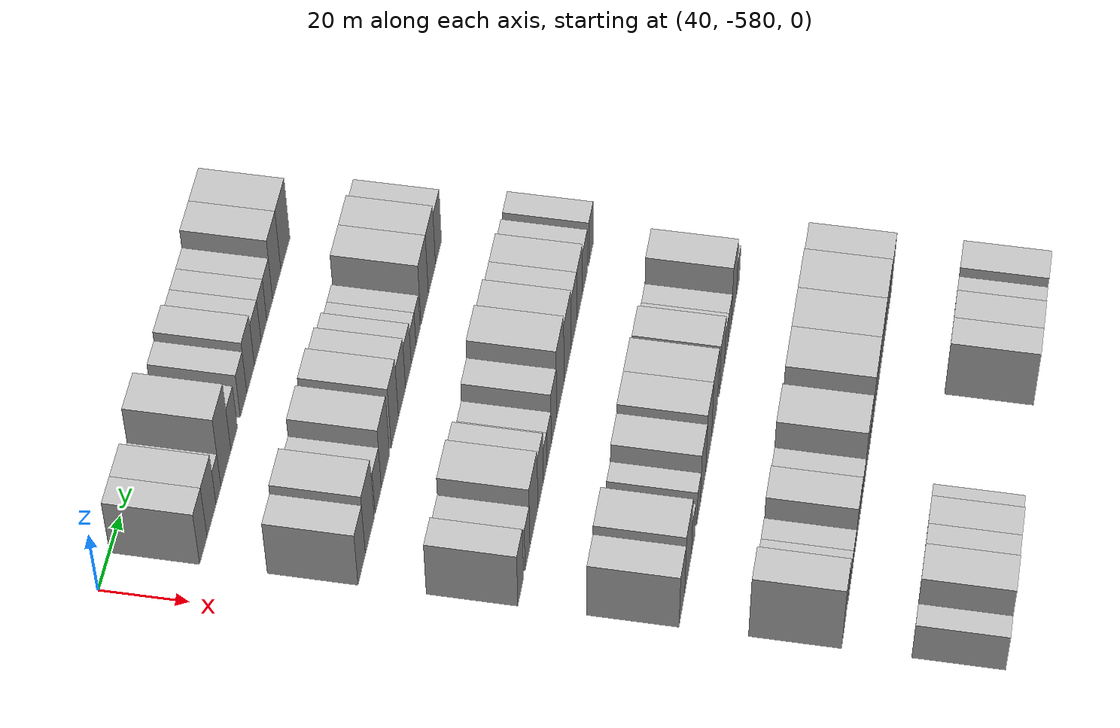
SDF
<sdf version="1.6">
 <world name="default">
  <model name="building_1">
   <static>1</static>
   <pose>50.0000 -566.3464 0 0.000000 0.000000 0.000000</pose>
   <link name="link">
    <pose>0 0 9.00 0 0 0</pose>
    <collision name="collision"><geometry><box><size>20.0000 7.3073 18.0000</size></box></geometry></collision>
    <visual name="visual">
     <cast_shadows>0</cast_shadows>
     <geometry><box><size>20.0000 7.3073 18.0000</size></box></geometry>
     <material>
      <script>
       <uri>model://HANNAS_wall/materials/scripts</uri>
       <uri>model://HANNAS_wall/materials/textures</uri>
       <name>vrc/HANNAS_wall</name>
      </script>
     </material>
    </visual>
   </link>
  </model>
  <model name="building_2">
   <static>1</static>
   <pose>50.0000 -558.2330 0 0.000000 0.000000 0.000000</pose>
   <link name="link">
    <pose>0 0 9.00 0 0 0</pose>
    <collision name="collision"><geometry><box><size>20.0000 8.9195 18.0000</size></box></geometry></collision>
    <visual name="visual">
     <cast_shadows>0</cast_shadows>
     <geometry><box><size>20.0000 8.9195 18.0000</size></box></geometry>
     <material>
      <script>
       <uri>model://HANNAS_wall/materials/scripts</uri>
       <uri>model://HANNAS_wall/materials/textures</uri>
       <name>vrc/HANNAS_wall</name>
      </script>
     </material>
    </visual>
   </link>
  </model>
  <model name="building_3">
   <static>1</static>
   <pose>50.0000 -551.3060 0 0.000000 0.000000 0.000000</pose>
   <link name="link">
    <pose>0 0 6.00 0 0 0</pose>
    <collision name="collision"><geometry><box><size>20.0000 4.9344 12.0000</size></box></geometry></collision>
    <visual name="visual">
     <cast_shadows>0</cast_shadows>
     <geometry><box><size>20.0000 4.9344 12.0000</size></box></geometry>
     <material>
      <script>
       <uri>model://HANNAS_wall/materials/scripts</uri>
       <uri>model://HANNAS_wall/materials/textures</uri>
       <name>vrc/HANNAS_wall</name>
      </script>
     </material>
    </visual>
   </link>
  </model>
  <model name="building_4">
   <static>1</static>
   <pose>50.0000 -543.7752 0 0.000000 0.000000 0.000000</pose>
   <link name="link">
    <pose>0 0 12.00 0 0 0</pose>
    <collision name="collision"><geometry><box><size>20.0000 10.1272 24.0000</size></box></geometry></collision>
    <visual name="visual">
     <cast_shadows>0</cast_shadows>
     <geometry><box><size>20.0000 10.1272 24.0000</size></box></geometry>
     <material>
      <script>
       <uri>model://HANNAS_wall/materials/scripts</uri>
       <uri>model://HANNAS_wall/materials/textures</uri>
       <name>vrc/HANNAS_wall</name>
      </script>
     </material>
    </visual>
   </link>
  </model>
  <model name="building_5">
   <static>1</static>
   <pose>50.0000 -535.4070 0 0.000000 0.000000 0.000000</pose>
   <link name="link">
    <pose>0 0 7.50 0 0 0</pose>
    <collision name="collision"><geometry><box><size>20.0000 6.6092 15.0000</size></box></geometry></collision>
    <visual name="visual">
     <cast_shadows>0</cast_shadows>
     <geometry><box><size>20.0000 6.6092 15.0000</size></box></geometry>
     <material>
      <script>
       <uri>model://HANNAS_wall/materials/scripts</uri>
       <uri>model://HANNAS_wall/materials/textures</uri>
       <name>vrc/HANNAS_wall</name>
      </script>
     </material>
    </visual>
   </link>
  </model>
  <model name="building_6">
   <static>1</static>
   <pose>50.0000 -525.6789 0 0.000000 0.000000 0.000000</pose>
   <link name="link">
    <pose>0 0 7.50 0 0 0</pose>
    <collision name="collision"><geometry><box><size>20.0000 6.8469 15.0000</size></box></geometry></collision>
    <visual name="visual">
     <cast_shadows>0</cast_shadows>
     <geometry><box><size>20.0000 6.8469 15.0000</size></box></geometry>
     <material>
      <script>
       <uri>model://HANNAS_wall/materials/scripts</uri>
       <uri>model://HANNAS_wall/materials/textures</uri>
       <name>vrc/HANNAS_wall</name>
      </script>
     </material>
    </visual>
   </link>
  </model>
  <model name="building_7">
   <static>1</static>
   <pose>50.0000 -518.2476 0 0.000000 0.000000 0.000000</pose>
   <link name="link">
    <pose>0 0 9.00 0 0 0</pose>
    <collision name="collision"><geometry><box><size>20.0000 8.0158 18.0000</size></box></geometry></collision>
    <visual name="visual">
     <cast_shadows>0</cast_shadows>
     <geometry><box><size>20.0000 8.0158 18.0000</size></box></geometry>
     <material>
      <script>
       <uri>model://HANNAS_wall/materials/scripts</uri>
       <uri>model://HANNAS_wall/materials/textures</uri>
       <name>vrc/HANNAS_wall</name>
      </script>
     </material>
    </visual>
   </link>
  </model>
  <model name="building_8">
   <static>1</static>
   <pose>50.0000 -510.7067 0 0.000000 0.000000 0.000000</pose>
   <link name="link">
    <pose>0 0 7.50 0 0 0</pose>
    <collision name="collision"><geometry><box><size>20.0000 7.0660 15.0000</size></box></geometry></collision>
    <visual name="visual">
     <cast_shadows>0</cast_shadows>
     <geometry><box><size>20.0000 7.0660 15.0000</size></box></geometry>
     <material>
      <script>
       <uri>model://HANNAS_wall/materials/scripts</uri>
       <uri>model://HANNAS_wall/materials/textures</uri>
       <name>vrc/HANNAS_wall</name>
      </script>
     </material>
    </visual>
   </link>
  </model>
  <model name="building_9">
   <static>1</static>
   <pose>50.0000 -504.0830 0 0.000000 0.000000 0.000000</pose>
   <link name="link">
    <pose>0 0 7.50 0 0 0</pose>
    <collision name="collision"><geometry><box><size>20.0000 6.1815 15.0000</size></box></geometry></collision>
    <visual name="visual">
     <cast_shadows>0</cast_shadows>
     <geometry><box><size>20.0000 6.1815 15.0000</size></box></geometry>
     <material>
      <script>
       <uri>model://HANNAS_wall/materials/scripts</uri>
       <uri>model://HANNAS_wall/materials/textures</uri>
       <name>vrc/HANNAS_wall</name>
      </script>
     </material>
    </visual>
   </link>
  </model>
  <model name="building_10">
   <static>1</static>
   <pose>50.0000 -497.8380 0 0.000000 0.000000 0.000000</pose>
   <link name="link">
    <pose>0 0 7.50 0 0 0</pose>
    <collision name="collision"><geometry><box><size>20.0000 6.3085 15.0000</size></box></geometry></collision>
    <visual name="visual">
     <cast_shadows>0</cast_shadows>
     <geometry><box><size>20.0000 6.3085 15.0000</size></box></geometry>
     <material>
      <script>
       <uri>model://HANNAS_wall/materials/scripts</uri>
       <uri>model://HANNAS_wall/materials/textures</uri>
       <name>vrc/HANNAS_wall</name>
      </script>
     </material>
    </visual>
   </link>
  </model>
  <model name="building_11">
   <static>1</static>
   <pose>50.0000 -490.1755 0 0.000000 0.000000 0.000000</pose>
   <link name="link">
    <pose>0 0 10.50 0 0 0</pose>
    <collision name="collision"><geometry><box><size>20.0000 9.0165 21.0000</size></box></geometry></collision>
    <visual name="visual">
     <cast_shadows>0</cast_shadows>
     <geometry><box><size>20.0000 9.0165 21.0000</size></box></geometry>
     <material>
      <script>
       <uri>model://HANNAS_wall/materials/scripts</uri>
       <uri>model://HANNAS_wall/materials/textures</uri>
       <name>vrc/HANNAS_wall</name>
      </script>
     </material>
    </visual>
   </link>
  </model>
  <model name="building_12">
   <static>1</static>
   <pose>50.0000 -480.6185 0 0.000000 0.000000 0.000000</pose>
   <link name="link">
    <pose>0 0 10.50 0 0 0</pose>
    <collision name="collision"><geometry><box><size>20.0000 10.0975 21.0000</size></box></geometry></collision>
    <visual name="visual">
     <cast_shadows>0</cast_shadows>
     <geometry><box><size>20.0000 10.0975 21.0000</size></box></geometry>
     <material>
      <script>
       <uri>model://HANNAS_wall/materials/scripts</uri>
       <uri>model://HANNAS_wall/materials/textures</uri>
       <name>vrc/HANNAS_wall</name>
      </script>
     </material>
    </visual>
   </link>
  </model>
  <model name="building_131">
   <static>1</static>
   <pose>85.0000 -565.9275 0 0.000000 0.000000 0.000000</pose>
   <link name="link">
    <pose>0 0 9.00 0 0 0</pose>
    <collision name="collision"><geometry><box><size>20.0000 8.1449 18.0000</size></box></geometry></collision>
    <visual name="visual">
     <cast_shadows>0</cast_shadows>
     <geometry><box><size>20.0000 8.1449 18.0000</size></box></geometry>
     <material>
      <script>
       <uri>model://HANNAS_wall/materials/scripts</uri>
       <uri>model://HANNAS_wall/materials/textures</uri>
       <name>vrc/HANNAS_wall</name>
      </script>
     </material>
    </visual>
   </link>
  </model>
  <model name="building_132">
   <static>1</static>
   <pose>85.0000 -556.8488 0 0.000000 0.000000 0.000000</pose>
   <link name="link">
    <pose>0 0 10.50 0 0 0</pose>
    <collision name="collision"><geometry><box><size>20.0000 10.0124 21.0000</size></box></geometry></collision>
    <visual name="visual">
     <cast_shadows>0</cast_shadows>
     <geometry><box><size>20.0000 10.0124 21.0000</size></box></geometry>
     <material>
      <script>
       <uri>model://HANNAS_wall/materials/scripts</uri>
       <uri>model://HANNAS_wall/materials/textures</uri>
       <name>vrc/HANNAS_wall</name>
      </script>
     </material>
    </visual>
   </link>
  </model>
  <model name="building_133">
   <static>1</static>
   <pose>85.0000 -547.3153 0 0.000000 0.000000 0.000000</pose>
   <link name="link">
    <pose>0 0 7.50 0 0 0</pose>
    <collision name="collision"><geometry><box><size>20.0000 7.0547 15.0000</size></box></geometry></collision>
    <visual name="visual">
     <cast_shadows>0</cast_shadows>
     <geometry><box><size>20.0000 7.0547 15.0000</size></box></geometry>
     <material>
      <script>
       <uri>model://HANNAS_wall/materials/scripts</uri>
       <uri>model://HANNAS_wall/materials/textures</uri>
       <name>vrc/HANNAS_wall</name>
      </script>
     </material>
    </visual>
   </link>
  </model>
  <model name="building_134">
   <static>1</static>
   <pose>85.0000 -539.0311 0 0.000000 0.000000 0.000000</pose>
   <link name="link">
    <pose>0 0 10.50 0 0 0</pose>
    <collision name="collision"><geometry><box><size>20.0000 9.5136 21.0000</size></box></geometry></collision>
    <visual name="visual">
     <cast_shadows>0</cast_shadows>
     <geometry><box><size>20.0000 9.5136 21.0000</size></box></geometry>
     <material>
      <script>
       <uri>model://HANNAS_wall/materials/scripts</uri>
       <uri>model://HANNAS_wall/materials/textures</uri>
       <name>vrc/HANNAS_wall</name>
      </script>
     </material>
    </visual>
   </link>
  </model>
  <model name="building_135">
   <static>1</static>
   <pose>85.0000 -528.0190 0 0.000000 0.000000 0.000000</pose>
   <link name="link">
    <pose>0 0 10.50 0 0 0</pose>
    <collision name="collision"><geometry><box><size>20.0000 8.5106 21.0000</size></box></geometry></collision>
    <visual name="visual">
     <cast_shadows>0</cast_shadows>
     <geometry><box><size>20.0000 8.5106 21.0000</size></box></geometry>
     <material>
      <script>
       <uri>model://HANNAS_wall/materials/scripts</uri>
       <uri>model://HANNAS_wall/materials/textures</uri>
       <name>vrc/HANNAS_wall</name>
      </script>
     </material>
    </visual>
   </link>
  </model>
  <model name="building_136">
   <static>1</static>
   <pose>85.0000 -519.5244 0 0.000000 0.000000 0.000000</pose>
   <link name="link">
    <pose>0 0 9.00 0 0 0</pose>
    <collision name="collision"><geometry><box><size>20.0000 8.4786 18.0000</size></box></geometry></collision>
    <visual name="visual">
     <cast_shadows>0</cast_shadows>
     <geometry><box><size>20.0000 8.4786 18.0000</size></box></geometry>
     <material>
      <script>
       <uri>model://HANNAS_wall/materials/scripts</uri>
       <uri>model://HANNAS_wall/materials/textures</uri>
       <name>vrc/HANNAS_wall</name>
      </script>
     </material>
    </visual>
   </link>
  </model>
  <model name="building_137">
   <static>1</static>
   <pose>85.0000 -511.8862 0 0.000000 0.000000 0.000000</pose>
   <link name="link">
    <pose>0 0 7.50 0 0 0</pose>
    <collision name="collision"><geometry><box><size>20.0000 6.7979 15.0000</size></box></geometry></collision>
    <visual name="visual">
     <cast_shadows>0</cast_shadows>
     <geometry><box><size>20.0000 6.7979 15.0000</size></box></geometry>
     <material>
      <script>
       <uri>model://HANNAS_wall/materials/scripts</uri>
       <uri>model://HANNAS_wall/materials/textures</uri>
       <name>vrc/HANNAS_wall</name>
      </script>
     </material>
    </visual>
   </link>
  </model>
  <model name="building_138">
   <static>1</static>
   <pose>85.0000 -505.6266 0 0.000000 0.000000 0.000000</pose>
   <link name="link">
    <pose>0 0 6.00 0 0 0</pose>
    <collision name="collision"><geometry><box><size>20.0000 5.7211 12.0000</size></box></geometry></collision>
    <visual name="visual">
     <cast_shadows>0</cast_shadows>
     <geometry><box><size>20.0000 5.7211 12.0000</size></box></geometry>
     <material>
      <script>
       <uri>model://HANNAS_wall/materials/scripts</uri>
       <uri>model://HANNAS_wall/materials/textures</uri>
       <name>vrc/HANNAS_wall</name>
      </script>
     </material>
    </visual>
   </link>
  </model>
  <model name="building_139">
   <static>1</static>
   <pose>85.0000 -500.1822 0 0.000000 0.000000 0.000000</pose>
   <link name="link">
    <pose>0 0 6.00 0 0 0</pose>
    <collision name="collision"><geometry><box><size>20.0000 5.1678 12.0000</size></box></geometry></collision>
    <visual name="visual">
     <cast_shadows>0</cast_shadows>
     <geometry><box><size>20.0000 5.1678 12.0000</size></box></geometry>
     <material>
      <script>
       <uri>model://HANNAS_wall/materials/scripts</uri>
       <uri>model://HANNAS_wall/materials/textures</uri>
       <name>vrc/HANNAS_wall</name>
      </script>
     </material>
    </visual>
   </link>
  </model>
  <model name="building_140">
   <static>1</static>
   <pose>85.0000 -491.9917 0 0.000000 0.000000 0.000000</pose>
   <link name="link">
    <pose>0 0 10.50 0 0 0</pose>
    <collision name="collision"><geometry><box><size>20.0000 9.2131 21.0000</size></box></geometry></collision>
    <visual name="visual">
     <cast_shadows>0</cast_shadows>
     <geometry><box><size>20.0000 9.2131 21.0000</size></box></geometry>
     <material>
      <script>
       <uri>model://HANNAS_wall/materials/scripts</uri>
       <uri>model://HANNAS_wall/materials/textures</uri>
       <name>vrc/HANNAS_wall</name>
      </script>
     </material>
    </visual>
   </link>
  </model>
  <model name="building_141">
   <static>1</static>
   <pose>85.0000 -482.9227 0 0.000000 0.000000 0.000000</pose>
   <link name="link">
    <pose>0 0 10.50 0 0 0</pose>
    <collision name="collision"><geometry><box><size>20.0000 8.9249 21.0000</size></box></geometry></collision>
    <visual name="visual">
     <cast_shadows>0</cast_shadows>
     <geometry><box><size>20.0000 8.9249 21.0000</size></box></geometry>
     <material>
      <script>
       <uri>model://HANNAS_wall/materials/scripts</uri>
       <uri>model://HANNAS_wall/materials/textures</uri>
       <name>vrc/HANNAS_wall</name>
      </script>
     </material>
    </visual>
   </link>
  </model>
  <model name="building_142">
   <static>1</static>
   <pose>85.0000 -474.6259 0 0.000000 0.000000 0.000000</pose>
   <link name="link">
    <pose>0 0 9.00 0 0 0</pose>
    <collision name="collision"><geometry><box><size>20.0000 7.6687 18.0000</size></box></geometry></collision>
    <visual name="visual">
     <cast_shadows>0</cast_shadows>
     <geometry><box><size>20.0000 7.6687 18.0000</size></box></geometry>
     <material>
      <script>
       <uri>model://HANNAS_wall/materials/scripts</uri>
       <uri>model://HANNAS_wall/materials/textures</uri>
       <name>vrc/HANNAS_wall</name>
      </script>
     </material>
    </visual>
   </link>
  </model>
  <model name="building_255">
   <static>1</static>
   <pose>120.0000 -566.3201 0 0.000000 0.000000 0.000000</pose>
   <link name="link">
    <pose>0 0 9.00 0 0 0</pose>
    <collision name="collision"><geometry><box><size>20.0000 7.3599 18.0000</size></box></geometry></collision>
    <visual name="visual">
     <cast_shadows>0</cast_shadows>
     <geometry><box><size>20.0000 7.3599 18.0000</size></box></geometry>
     <material>
      <script>
       <uri>model://HANNAS_wall/materials/scripts</uri>
       <uri>model://HANNAS_wall/materials/textures</uri>
       <name>vrc/HANNAS_wall</name>
      </script>
     </material>
    </visual>
   </link>
  </model>
  <model name="building_256">
   <static>1</static>
   <pose>120.0000 -557.4984 0 0.000000 0.000000 0.000000</pose>
   <link name="link">
    <pose>0 0 7.50 0 0 0</pose>
    <collision name="collision"><geometry><box><size>20.0000 6.2835 15.0000</size></box></geometry></collision>
    <visual name="visual">
     <cast_shadows>0</cast_shadows>
     <geometry><box><size>20.0000 6.2835 15.0000</size></box></geometry>
     <material>
      <script>
       <uri>model://HANNAS_wall/materials/scripts</uri>
       <uri>model://HANNAS_wall/materials/textures</uri>
       <name>vrc/HANNAS_wall</name>
      </script>
     </material>
    </visual>
   </link>
  </model>
  <model name="building_257">
   <static>1</static>
   <pose>120.0000 -549.1129 0 0.000000 0.000000 0.000000</pose>
   <link name="link">
    <pose>0 0 10.50 0 0 0</pose>
    <collision name="collision"><geometry><box><size>20.0000 10.4876 21.0000</size></box></geometry></collision>
    <visual name="visual">
     <cast_shadows>0</cast_shadows>
     <geometry><box><size>20.0000 10.4876 21.0000</size></box></geometry>
     <material>
      <script>
       <uri>model://HANNAS_wall/materials/scripts</uri>
       <uri>model://HANNAS_wall/materials/textures</uri>
       <name>vrc/HANNAS_wall</name>
      </script>
     </material>
    </visual>
   </link>
  </model>
  <model name="building_258">
   <static>1</static>
   <pose>120.0000 -540.2070 0 0.000000 0.000000 0.000000</pose>
   <link name="link">
    <pose>0 0 9.00 0 0 0</pose>
    <collision name="collision"><geometry><box><size>20.0000 7.3241 18.0000</size></box></geometry></collision>
    <visual name="visual">
     <cast_shadows>0</cast_shadows>
     <geometry><box><size>20.0000 7.3241 18.0000</size></box></geometry>
     <material>
      <script>
       <uri>model://HANNAS_wall/materials/scripts</uri>
       <uri>model://HANNAS_wall/materials/textures</uri>
       <name>vrc/HANNAS_wall</name>
      </script>
     </material>
    </visual>
   </link>
  </model>
  <model name="building_259">
   <static>1</static>
   <pose>120.0000 -534.1125 0 0.000000 0.000000 0.000000</pose>
   <link name="link">
    <pose>0 0 6.00 0 0 0</pose>
    <collision name="collision"><geometry><box><size>20.0000 4.8650 12.0000</size></box></geometry></collision>
    <visual name="visual">
     <cast_shadows>0</cast_shadows>
     <geometry><box><size>20.0000 4.8650 12.0000</size></box></geometry>
     <material>
      <script>
       <uri>model://HANNAS_wall/materials/scripts</uri>
       <uri>model://HANNAS_wall/materials/textures</uri>
       <name>vrc/HANNAS_wall</name>
      </script>
     </material>
    </visual>
   </link>
  </model>
  <model name="building_260">
   <static>1</static>
   <pose>120.0000 -528.7936 0 0.000000 0.000000 0.000000</pose>
   <link name="link">
    <pose>0 0 6.00 0 0 0</pose>
    <collision name="collision"><geometry><box><size>20.0000 5.7727 12.0000</size></box></geometry></collision>
    <visual name="visual">
     <cast_shadows>0</cast_shadows>
     <geometry><box><size>20.0000 5.7727 12.0000</size></box></geometry>
     <material>
      <script>
       <uri>model://HANNAS_wall/materials/scripts</uri>
       <uri>model://HANNAS_wall/materials/textures</uri>
       <name>vrc/HANNAS_wall</name>
      </script>
     </material>
    </visual>
   </link>
  </model>
  <model name="building_261">
   <static>1</static>
   <pose>120.0000 -522.1942 0 0.000000 0.000000 0.000000</pose>
   <link name="link">
    <pose>0 0 9.00 0 0 0</pose>
    <collision name="collision"><geometry><box><size>20.0000 7.4260 18.0000</size></box></geometry></collision>
    <visual name="visual">
     <cast_shadows>0</cast_shadows>
     <geometry><box><size>20.0000 7.4260 18.0000</size></box></geometry>
     <material>
      <script>
       <uri>model://HANNAS_wall/materials/scripts</uri>
       <uri>model://HANNAS_wall/materials/textures</uri>
       <name>vrc/HANNAS_wall</name>
      </script>
     </material>
    </visual>
   </link>
  </model>
  <model name="building_262">
   <static>1</static>
   <pose>120.0000 -513.3489 0 0.000000 0.000000 0.000000</pose>
   <link name="link">
    <pose>0 0 12.00 0 0 0</pose>
    <collision name="collision"><geometry><box><size>20.0000 10.2647 24.0000</size></box></geometry></collision>
    <visual name="visual">
     <cast_shadows>0</cast_shadows>
     <geometry><box><size>20.0000 10.2647 24.0000</size></box></geometry>
     <material>
      <script>
       <uri>model://HANNAS_wall/materials/scripts</uri>
       <uri>model://HANNAS_wall/materials/textures</uri>
       <name>vrc/HANNAS_wall</name>
      </script>
     </material>
    </visual>
   </link>
  </model>
  <model name="building_263">
   <static>1</static>
   <pose>120.0000 -503.1969 0 0.000000 0.000000 0.000000</pose>
   <link name="link">
    <pose>0 0 10.50 0 0 0</pose>
    <collision name="collision"><geometry><box><size>20.0000 10.0393 21.0000</size></box></geometry></collision>
    <visual name="visual">
     <cast_shadows>0</cast_shadows>
     <geometry><box><size>20.0000 10.0393 21.0000</size></box></geometry>
     <material>
      <script>
       <uri>model://HANNAS_wall/materials/scripts</uri>
       <uri>model://HANNAS_wall/materials/textures</uri>
       <name>vrc/HANNAS_wall</name>
      </script>
     </material>
    </visual>
   </link>
  </model>
  <model name="building_264">
   <static>1</static>
   <pose>120.0000 -494.2310 0 0.000000 0.000000 0.000000</pose>
   <link name="link">
    <pose>0 0 9.00 0 0 0</pose>
    <collision name="collision"><geometry><box><size>20.0000 7.8924 18.0000</size></box></geometry></collision>
    <visual name="visual">
     <cast_shadows>0</cast_shadows>
     <geometry><box><size>20.0000 7.8924 18.0000</size></box></geometry>
     <material>
      <script>
       <uri>model://HANNAS_wall/materials/scripts</uri>
       <uri>model://HANNAS_wall/materials/textures</uri>
       <name>vrc/HANNAS_wall</name>
      </script>
     </material>
    </visual>
   </link>
  </model>
  <model name="building_265">
   <static>1</static>
   <pose>120.0000 -486.0700 0 0.000000 0.000000 0.000000</pose>
   <link name="link">
    <pose>0 0 9.00 0 0 0</pose>
    <collision name="collision"><geometry><box><size>20.0000 8.4296 18.0000</size></box></geometry></collision>
    <visual name="visual">
     <cast_shadows>0</cast_shadows>
     <geometry><box><size>20.0000 8.4296 18.0000</size></box></geometry>
     <material>
      <script>
       <uri>model://HANNAS_wall/materials/scripts</uri>
       <uri>model://HANNAS_wall/materials/textures</uri>
       <name>vrc/HANNAS_wall</name>
      </script>
     </material>
    </visual>
   </link>
  </model>
  <model name="building_266">
   <static>1</static>
   <pose>120.0000 -478.3464 0 0.000000 0.000000 0.000000</pose>
   <link name="link">
    <pose>0 0 7.50 0 0 0</pose>
    <collision name="collision"><geometry><box><size>20.0000 7.0176 15.0000</size></box></geometry></collision>
    <visual name="visual">
     <cast_shadows>0</cast_shadows>
     <geometry><box><size>20.0000 7.0176 15.0000</size></box></geometry>
     <material>
      <script>
       <uri>model://HANNAS_wall/materials/scripts</uri>
       <uri>model://HANNAS_wall/materials/textures</uri>
       <name>vrc/HANNAS_wall</name>
      </script>
     </material>
    </visual>
   </link>
  </model>
  <model name="building_267">
   <static>1</static>
   <pose>120.0000 -469.5472 0 0.000000 0.000000 0.000000</pose>
   <link name="link">
    <pose>0 0 7.50 0 0 0</pose>
    <collision name="collision"><geometry><box><size>20.0000 6.5808 15.0000</size></box></geometry></collision>
    <visual name="visual">
     <cast_shadows>0</cast_shadows>
     <geometry><box><size>20.0000 6.5808 15.0000</size></box></geometry>
     <material>
      <script>
       <uri>model://HANNAS_wall/materials/scripts</uri>
       <uri>model://HANNAS_wall/materials/textures</uri>
       <name>vrc/HANNAS_wall</name>
      </script>
     </material>
    </visual>
   </link>
  </model>
  <model name="building_378">
   <static>1</static>
   <pose>155.0000 -565.7818 0 0.000000 0.000000 0.000000</pose>
   <link name="link">
    <pose>0 0 9.00 0 0 0</pose>
    <collision name="collision"><geometry><box><size>20.0000 8.4365 18.0000</size></box></geometry></collision>
    <visual name="visual">
     <cast_shadows>0</cast_shadows>
     <geometry><box><size>20.0000 8.4365 18.0000</size></box></geometry>
     <material>
      <script>
       <uri>model://HANNAS_wall/materials/scripts</uri>
       <uri>model://HANNAS_wall/materials/textures</uri>
       <name>vrc/HANNAS_wall</name>
      </script>
     </material>
    </visual>
   </link>
  </model>
  <model name="building_379">
   <static>1</static>
   <pose>155.0000 -556.3882 0 0.000000 0.000000 0.000000</pose>
   <link name="link">
    <pose>0 0 10.50 0 0 0</pose>
    <collision name="collision"><geometry><box><size>20.0000 10.3506 21.0000</size></box></geometry></collision>
    <visual name="visual">
     <cast_shadows>0</cast_shadows>
     <geometry><box><size>20.0000 10.3506 21.0000</size></box></geometry>
     <material>
      <script>
       <uri>model://HANNAS_wall/materials/scripts</uri>
       <uri>model://HANNAS_wall/materials/textures</uri>
       <name>vrc/HANNAS_wall</name>
      </script>
     </material>
    </visual>
   </link>
  </model>
  <model name="building_380">
   <static>1</static>
   <pose>155.0000 -548.5097 0 0.000000 0.000000 0.000000</pose>
   <link name="link">
    <pose>0 0 6.00 0 0 0</pose>
    <collision name="collision"><geometry><box><size>20.0000 5.4066 12.0000</size></box></geometry></collision>
    <visual name="visual">
     <cast_shadows>0</cast_shadows>
     <geometry><box><size>20.0000 5.4066 12.0000</size></box></geometry>
     <material>
      <script>
       <uri>model://HANNAS_wall/materials/scripts</uri>
       <uri>model://HANNAS_wall/materials/textures</uri>
       <name>vrc/HANNAS_wall</name>
      </script>
     </material>
    </visual>
   </link>
  </model>
  <model name="building_381">
   <static>1</static>
   <pose>155.0000 -540.0550 0 0.000000 0.000000 0.000000</pose>
   <link name="link">
    <pose>0 0 6.00 0 0 0</pose>
    <collision name="collision"><geometry><box><size>20.0000 5.5028 12.0000</size></box></geometry></collision>
    <visual name="visual">
     <cast_shadows>0</cast_shadows>
     <geometry><box><size>20.0000 5.5028 12.0000</size></box></geometry>
     <material>
      <script>
       <uri>model://HANNAS_wall/materials/scripts</uri>
       <uri>model://HANNAS_wall/materials/textures</uri>
       <name>vrc/HANNAS_wall</name>
      </script>
     </material>
    </visual>
   </link>
  </model>
  <model name="building_382">
   <static>1</static>
   <pose>155.0000 -532.9108 0 0.000000 0.000000 0.000000</pose>
   <link name="link">
    <pose>0 0 9.00 0 0 0</pose>
    <collision name="collision"><geometry><box><size>20.0000 8.7856 18.0000</size></box></geometry></collision>
    <visual name="visual">
     <cast_shadows>0</cast_shadows>
     <geometry><box><size>20.0000 8.7856 18.0000</size></box></geometry>
     <material>
      <script>
       <uri>model://HANNAS_wall/materials/scripts</uri>
       <uri>model://HANNAS_wall/materials/textures</uri>
       <name>vrc/HANNAS_wall</name>
      </script>
     </material>
    </visual>
   </link>
  </model>
  <model name="building_383">
   <static>1</static>
   <pose>155.0000 -523.7977 0 0.000000 0.000000 0.000000</pose>
   <link name="link">
    <pose>0 0 10.50 0 0 0</pose>
    <collision name="collision"><geometry><box><size>20.0000 9.4407 21.0000</size></box></geometry></collision>
    <visual name="visual">
     <cast_shadows>0</cast_shadows>
     <geometry><box><size>20.0000 9.4407 21.0000</size></box></geometry>
     <material>
      <script>
       <uri>model://HANNAS_wall/materials/scripts</uri>
       <uri>model://HANNAS_wall/materials/textures</uri>
       <name>vrc/HANNAS_wall</name>
      </script>
     </material>
    </visual>
   </link>
  </model>
  <model name="building_384">
   <static>1</static>
   <pose>155.0000 -514.2945 0 0.000000 0.000000 0.000000</pose>
   <link name="link">
    <pose>0 0 10.50 0 0 0</pose>
    <collision name="collision"><geometry><box><size>20.0000 9.5658 21.0000</size></box></geometry></collision>
    <visual name="visual">
     <cast_shadows>0</cast_shadows>
     <geometry><box><size>20.0000 9.5658 21.0000</size></box></geometry>
     <material>
      <script>
       <uri>model://HANNAS_wall/materials/scripts</uri>
       <uri>model://HANNAS_wall/materials/textures</uri>
       <name>vrc/HANNAS_wall</name>
      </script>
     </material>
    </visual>
   </link>
  </model>
  <model name="building_385">
   <static>1</static>
   <pose>155.0000 -502.1159 0 0.000000 0.000000 0.000000</pose>
   <link name="link">
    <pose>0 0 9.00 0 0 0</pose>
    <collision name="collision"><geometry><box><size>20.0000 8.7915 18.0000</size></box></geometry></collision>
    <visual name="visual">
     <cast_shadows>0</cast_shadows>
     <geometry><box><size>20.0000 8.7915 18.0000</size></box></geometry>
     <material>
      <script>
       <uri>model://HANNAS_wall/materials/scripts</uri>
       <uri>model://HANNAS_wall/materials/textures</uri>
       <name>vrc/HANNAS_wall</name>
      </script>
     </material>
    </visual>
   </link>
  </model>
  <model name="building_386">
   <static>1</static>
   <pose>155.0000 -494.7639 0 0.000000 0.000000 0.000000</pose>
   <link name="link">
    <pose>0 0 6.00 0 0 0</pose>
    <collision name="collision"><geometry><box><size>20.0000 5.9125 12.0000</size></box></geometry></collision>
    <visual name="visual">
     <cast_shadows>0</cast_shadows>
     <geometry><box><size>20.0000 5.9125 12.0000</size></box></geometry>
     <material>
      <script>
       <uri>model://HANNAS_wall/materials/scripts</uri>
       <uri>model://HANNAS_wall/materials/textures</uri>
       <name>vrc/HANNAS_wall</name>
      </script>
     </material>
    </visual>
   </link>
  </model>
  <model name="building_387">
   <static>1</static>
   <pose>155.0000 -488.9905 0 0.000000 0.000000 0.000000</pose>
   <link name="link">
    <pose>0 0 6.00 0 0 0</pose>
    <collision name="collision"><geometry><box><size>20.0000 5.6342 12.0000</size></box></geometry></collision>
    <visual name="visual">
     <cast_shadows>0</cast_shadows>
     <geometry><box><size>20.0000 5.6342 12.0000</size></box></geometry>
     <material>
      <script>
       <uri>model://HANNAS_wall/materials/scripts</uri>
       <uri>model://HANNAS_wall/materials/textures</uri>
       <name>vrc/HANNAS_wall</name>
      </script>
     </material>
    </visual>
   </link>
  </model>
  <model name="building_388">
   <static>1</static>
   <pose>155.0000 -481.7839 0 0.000000 0.000000 0.000000</pose>
   <link name="link">
    <pose>0 0 10.50 0 0 0</pose>
    <collision name="collision"><geometry><box><size>20.0000 8.7789 21.0000</size></box></geometry></collision>
    <visual name="visual">
     <cast_shadows>0</cast_shadows>
     <geometry><box><size>20.0000 8.7789 21.0000</size></box></geometry>
     <material>
      <script>
       <uri>model://HANNAS_wall/materials/scripts</uri>
       <uri>model://HANNAS_wall/materials/textures</uri>
       <name>vrc/HANNAS_wall</name>
      </script>
     </material>
    </visual>
   </link>
  </model>
  <model name="building_389">
   <static>1</static>
   <pose>155.0000 -474.4578 0 0.000000 0.000000 0.000000</pose>
   <link name="link">
    <pose>0 0 6.00 0 0 0</pose>
    <collision name="collision"><geometry><box><size>20.0000 5.8732 12.0000</size></box></geometry></collision>
    <visual name="visual">
     <cast_shadows>0</cast_shadows>
     <geometry><box><size>20.0000 5.8732 12.0000</size></box></geometry>
     <material>
      <script>
       <uri>model://HANNAS_wall/materials/scripts</uri>
       <uri>model://HANNAS_wall/materials/textures</uri>
       <name>vrc/HANNAS_wall</name>
      </script>
     </material>
    </visual>
   </link>
  </model>
  <model name="building_507">
   <static>1</static>
   <pose>190.0000 -565.7071 0 0.000000 0.000000 0.000000</pose>
   <link name="link">
    <pose>0 0 10.50 0 0 0</pose>
    <collision name="collision"><geometry><box><size>20.0000 8.5859 21.0000</size></box></geometry></collision>
    <visual name="visual">
     <cast_shadows>0</cast_shadows>
     <geometry><box><size>20.0000 8.5859 21.0000</size></box></geometry>
     <material>
      <script>
       <uri>model://HANNAS_wall/materials/scripts</uri>
       <uri>model://HANNAS_wall/materials/textures</uri>
       <name>vrc/HANNAS_wall</name>
      </script>
     </material>
    </visual>
   </link>
  </model>
  <model name="building_508">
   <static>1</static>
   <pose>190.0000 -555.5868 0 0.000000 0.000000 0.000000</pose>
   <link name="link">
    <pose>0 0 6.00 0 0 0</pose>
    <collision name="collision"><geometry><box><size>20.0000 5.6548 12.0000</size></box></geometry></collision>
    <visual name="visual">
     <cast_shadows>0</cast_shadows>
     <geometry><box><size>20.0000 5.6548 12.0000</size></box></geometry>
     <material>
      <script>
       <uri>model://HANNAS_wall/materials/scripts</uri>
       <uri>model://HANNAS_wall/materials/textures</uri>
       <name>vrc/HANNAS_wall</name>
      </script>
     </material>
    </visual>
   </link>
  </model>
  <model name="building_509">
   <static>1</static>
   <pose>190.0000 -549.9714 0 0.000000 0.000000 0.000000</pose>
   <link name="link">
    <pose>0 0 6.00 0 0 0</pose>
    <collision name="collision"><geometry><box><size>20.0000 5.5759 12.0000</size></box></geometry></collision>
    <visual name="visual">
     <cast_shadows>0</cast_shadows>
     <geometry><box><size>20.0000 5.5759 12.0000</size></box></geometry>
     <material>
      <script>
       <uri>model://HANNAS_wall/materials/scripts</uri>
       <uri>model://HANNAS_wall/materials/textures</uri>
       <name>vrc/HANNAS_wall</name>
      </script>
     </material>
    </visual>
   </link>
  </model>
  <model name="building_510">
   <static>1</static>
   <pose>190.0000 -541.8361 0 0.000000 0.000000 0.000000</pose>
   <link name="link">
    <pose>0 0 9.00 0 0 0</pose>
    <collision name="collision"><geometry><box><size>20.0000 8.6948 18.0000</size></box></geometry></collision>
    <visual name="visual">
     <cast_shadows>0</cast_shadows>
     <geometry><box><size>20.0000 8.6948 18.0000</size></box></geometry>
     <material>
      <script>
       <uri>model://HANNAS_wall/materials/scripts</uri>
       <uri>model://HANNAS_wall/materials/textures</uri>
       <name>vrc/HANNAS_wall</name>
      </script>
     </material>
    </visual>
   </link>
  </model>
  <model name="building_511">
   <static>1</static>
   <pose>190.0000 -533.8315 0 0.000000 0.000000 0.000000</pose>
   <link name="link">
    <pose>0 0 7.50 0 0 0</pose>
    <collision name="collision"><geometry><box><size>20.0000 7.3144 15.0000</size></box></geometry></collision>
    <visual name="visual">
     <cast_shadows>0</cast_shadows>
     <geometry><box><size>20.0000 7.3144 15.0000</size></box></geometry>
     <material>
      <script>
       <uri>model://HANNAS_wall/materials/scripts</uri>
       <uri>model://HANNAS_wall/materials/textures</uri>
       <name>vrc/HANNAS_wall</name>
      </script>
     </material>
    </visual>
   </link>
  </model>
  <model name="building_512">
   <static>1</static>
   <pose>190.0000 -524.8492 0 0.000000 0.000000 0.000000</pose>
   <link name="link">
    <pose>0 0 12.00 0 0 0</pose>
    <collision name="collision"><geometry><box><size>20.0000 10.6503 24.0000</size></box></geometry></collision>
    <visual name="visual">
     <cast_shadows>0</cast_shadows>
     <geometry><box><size>20.0000 10.6503 24.0000</size></box></geometry>
     <material>
      <script>
       <uri>model://HANNAS_wall/materials/scripts</uri>
       <uri>model://HANNAS_wall/materials/textures</uri>
       <name>vrc/HANNAS_wall</name>
      </script>
     </material>
    </visual>
   </link>
  </model>
  <model name="building_513">
   <static>1</static>
   <pose>190.0000 -517.0833 0 0.000000 0.000000 0.000000</pose>
   <link name="link">
    <pose>0 0 6.00 0 0 0</pose>
    <collision name="collision"><geometry><box><size>20.0000 4.8816 12.0000</size></box></geometry></collision>
    <visual name="visual">
     <cast_shadows>0</cast_shadows>
     <geometry><box><size>20.0000 4.8816 12.0000</size></box></geometry>
     <material>
      <script>
       <uri>model://HANNAS_wall/materials/scripts</uri>
       <uri>model://HANNAS_wall/materials/textures</uri>
       <name>vrc/HANNAS_wall</name>
      </script>
     </material>
    </visual>
   </link>
  </model>
  <model name="building_514">
   <static>1</static>
   <pose>190.0000 -508.8747 0 0.000000 0.000000 0.000000</pose>
   <link name="link">
    <pose>0 0 12.00 0 0 0</pose>
    <collision name="collision"><geometry><box><size>20.0000 11.5355 24.0000</size></box></geometry></collision>
    <visual name="visual">
     <cast_shadows>0</cast_shadows>
     <geometry><box><size>20.0000 11.5355 24.0000</size></box></geometry>
     <material>
      <script>
       <uri>model://HANNAS_wall/materials/scripts</uri>
       <uri>model://HANNAS_wall/materials/textures</uri>
       <name>vrc/HANNAS_wall</name>
      </script>
     </material>
    </visual>
   </link>
  </model>
  <model name="building_515">
   <static>1</static>
   <pose>190.0000 -497.4746 0 0.000000 0.000000 0.000000</pose>
   <link name="link">
    <pose>0 0 12.00 0 0 0</pose>
    <collision name="collision"><geometry><box><size>20.0000 11.2647 24.0000</size></box></geometry></collision>
    <visual name="visual">
     <cast_shadows>0</cast_shadows>
     <geometry><box><size>20.0000 11.2647 24.0000</size></box></geometry>
     <material>
      <script>
       <uri>model://HANNAS_wall/materials/scripts</uri>
       <uri>model://HANNAS_wall/materials/textures</uri>
       <name>vrc/HANNAS_wall</name>
      </script>
     </material>
    </visual>
   </link>
  </model>
  <model name="building_516">
   <static>1</static>
   <pose>190.0000 -486.1258 0 0.000000 0.000000 0.000000</pose>
   <link name="link">
    <pose>0 0 12.00 0 0 0</pose>
    <collision name="collision"><geometry><box><size>20.0000 11.4331 24.0000</size></box></geometry></collision>
    <visual name="visual">
     <cast_shadows>0</cast_shadows>
     <geometry><box><size>20.0000 11.4331 24.0000</size></box></geometry>
     <material>
      <script>
       <uri>model://HANNAS_wall/materials/scripts</uri>
       <uri>model://HANNAS_wall/materials/textures</uri>
       <name>vrc/HANNAS_wall</name>
      </script>
     </material>
    </visual>
   </link>
  </model>
  <model name="building_517">
   <static>1</static>
   <pose>190.0000 -474.1768 0 0.000000 0.000000 0.000000</pose>
   <link name="link">
    <pose>0 0 10.50 0 0 0</pose>
    <collision name="collision"><geometry><box><size>20.0000 8.4648 21.0000</size></box></geometry></collision>
    <visual name="visual">
     <cast_shadows>0</cast_shadows>
     <geometry><box><size>20.0000 8.4648 21.0000</size></box></geometry>
     <material>
      <script>
       <uri>model://HANNAS_wall/materials/scripts</uri>
       <uri>model://HANNAS_wall/materials/textures</uri>
       <name>vrc/HANNAS_wall</name>
      </script>
     </material>
    </visual>
   </link>
  </model>
  <model name="building_639">
   <static>1</static>
   <pose>225.0000 -567.1529 0 0.000000 0.000000 0.000000</pose>
   <link name="link">
    <pose>0 0 6.00 0 0 0</pose>
    <collision name="collision"><geometry><box><size>20.0000 5.6942 12.0000</size></box></geometry></collision>
    <visual name="visual">
     <cast_shadows>0</cast_shadows>
     <geometry><box><size>20.0000 5.6942 12.0000</size></box></geometry>
     <material>
      <script>
       <uri>model://HANNAS_wall/materials/scripts</uri>
       <uri>model://HANNAS_wall/materials/textures</uri>
       <name>vrc/HANNAS_wall</name>
      </script>
     </material>
    </visual>
   </link>
  </model>
  <model name="building_640">
   <static>1</static>
   <pose>225.0000 -559.6416 0 0.000000 0.000000 0.000000</pose>
   <link name="link">
    <pose>0 0 10.50 0 0 0</pose>
    <collision name="collision"><geometry><box><size>20.0000 9.3285 21.0000</size></box></geometry></collision>
    <visual name="visual">
     <cast_shadows>0</cast_shadows>
     <geometry><box><size>20.0000 9.3285 21.0000</size></box></geometry>
     <material>
      <script>
       <uri>model://HANNAS_wall/materials/scripts</uri>
       <uri>model://HANNAS_wall/materials/textures</uri>
       <name>vrc/HANNAS_wall</name>
      </script>
     </material>
    </visual>
   </link>
  </model>
  <model name="building_641">
   <static>1</static>
   <pose>225.0000 -551.1985 0 0.000000 0.000000 0.000000</pose>
   <link name="link">
    <pose>0 0 9.00 0 0 0</pose>
    <collision name="collision"><geometry><box><size>20.0000 7.5576 18.0000</size></box></geometry></collision>
    <visual name="visual">
     <cast_shadows>0</cast_shadows>
     <geometry><box><size>20.0000 7.5576 18.0000</size></box></geometry>
     <material>
      <script>
       <uri>model://HANNAS_wall/materials/scripts</uri>
       <uri>model://HANNAS_wall/materials/textures</uri>
       <name>vrc/HANNAS_wall</name>
      </script>
     </material>
    </visual>
   </link>
  </model>
  <model name="building_642">
   <static>1</static>
   <pose>225.0000 -543.7053 0 0.000000 0.000000 0.000000</pose>
   <link name="link">
    <pose>0 0 9.00 0 0 0</pose>
    <collision name="collision"><geometry><box><size>20.0000 7.4288 18.0000</size></box></geometry></collision>
    <visual name="visual">
     <cast_shadows>0</cast_shadows>
     <geometry><box><size>20.0000 7.4288 18.0000</size></box></geometry>
     <material>
      <script>
       <uri>model://HANNAS_wall/materials/scripts</uri>
       <uri>model://HANNAS_wall/materials/textures</uri>
       <name>vrc/HANNAS_wall</name>
      </script>
     </material>
    </visual>
   </link>
  </model>
  <model name="building_643">
   <static>1</static>
   <pose>225.0000 -535.1469 0 0.000000 0.000000 0.000000</pose>
   <link name="link">
    <pose>0 0 6.00 0 0 0</pose>
    <collision name="collision"><geometry><box><size>20.0000 5.6882 12.0000</size></box></geometry></collision>
    <visual name="visual">
     <cast_shadows>0</cast_shadows>
     <geometry><box><size>20.0000 5.6882 12.0000</size></box></geometry>
     <material>
      <script>
       <uri>model://HANNAS_wall/materials/scripts</uri>
       <uri>model://HANNAS_wall/materials/textures</uri>
       <name>vrc/HANNAS_wall</name>
      </script>
     </material>
    </visual>
   </link>
  </model>
  <model name="building_644">
   <static>1</static>
   <pose>225.0000 -493.8340 0 0.000000 0.000000 0.000000</pose>
   <link name="link">
    <pose>0 0 9.00 0 0 0</pose>
    <collision name="collision"><geometry><box><size>20.0000 7.6459 18.0000</size></box></geometry></collision>
    <visual name="visual">
     <cast_shadows>0</cast_shadows>
     <geometry><box><size>20.0000 7.6459 18.0000</size></box></geometry>
     <material>
      <script>
       <uri>model://HANNAS_wall/materials/scripts</uri>
       <uri>model://HANNAS_wall/materials/textures</uri>
       <name>vrc/HANNAS_wall</name>
      </script>
     </material>
    </visual>
   </link>
  </model>
  <model name="building_645">
   <static>1</static>
   <pose>225.0000 -486.0183 0 0.000000 0.000000 0.000000</pose>
   <link name="link">
    <pose>0 0 9.00 0 0 0</pose>
    <collision name="collision"><geometry><box><size>20.0000 7.9854 18.0000</size></box></geometry></collision>
    <visual name="visual">
     <cast_shadows>0</cast_shadows>
     <geometry><box><size>20.0000 7.9854 18.0000</size></box></geometry>
     <material>
      <script>
       <uri>model://HANNAS_wall/materials/scripts</uri>
       <uri>model://HANNAS_wall/materials/textures</uri>
       <name>vrc/HANNAS_wall</name>
      </script>
     </material>
    </visual>
   </link>
  </model>
  <model name="building_646">
   <static>1</static>
   <pose>225.0000 -478.7115 0 0.000000 0.000000 0.000000</pose>
   <link name="link">
    <pose>0 0 7.50 0 0 0</pose>
    <collision name="collision"><geometry><box><size>20.0000 6.6282 15.0000</size></box></geometry></collision>
    <visual name="visual">
     <cast_shadows>0</cast_shadows>
     <geometry><box><size>20.0000 6.6282 15.0000</size></box></geometry>
     <material>
      <script>
       <uri>model://HANNAS_wall/materials/scripts</uri>
       <uri>model://HANNAS_wall/materials/textures</uri>
       <name>vrc/HANNAS_wall</name>
      </script>
     </material>
    </visual>
   </link>
  </model>
  <model name="building_647">
   <static>1</static>
   <pose>225.0000 -471.3052 0 0.000000 0.000000 0.000000</pose>
   <link name="link">
    <pose>0 0 9.00 0 0 0</pose>
    <collision name="collision"><geometry><box><size>20.0000 8.1845 18.0000</size></box></geometry></collision>
    <visual name="visual">
     <cast_shadows>0</cast_shadows>
     <geometry><box><size>20.0000 8.1845 18.0000</size></box></geometry>
     <material>
      <script>
       <uri>model://HANNAS_wall/materials/scripts</uri>
       <uri>model://HANNAS_wall/materials/textures</uri>
       <name>vrc/HANNAS_wall</name>
      </script>
     </material>
    </visual>
   </link>
  </model>
 </world>
</sdf>
